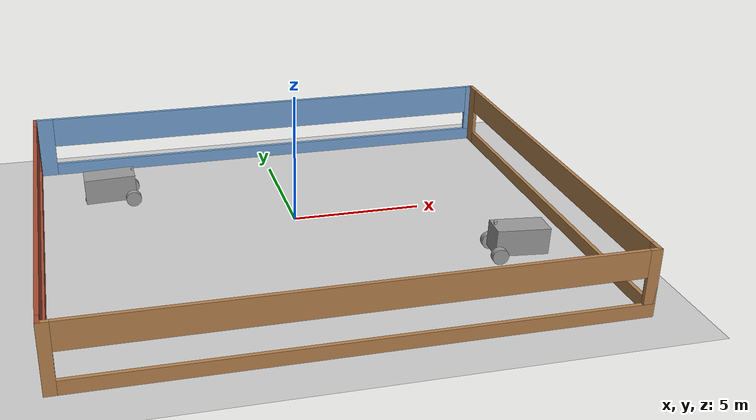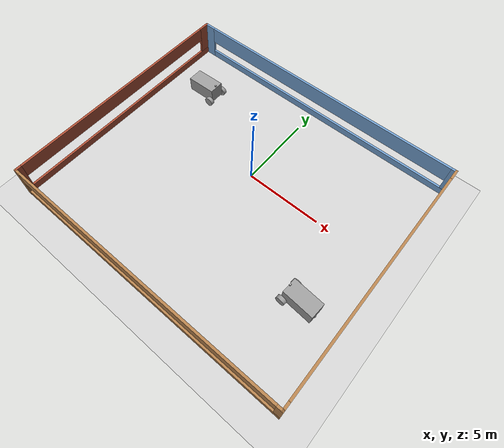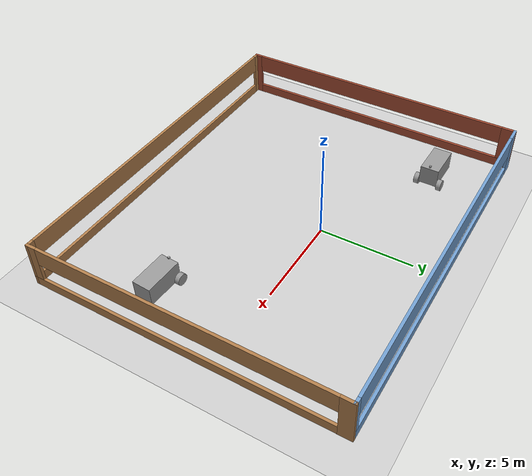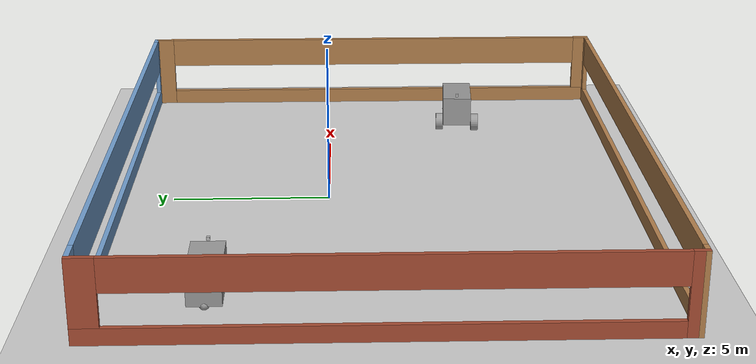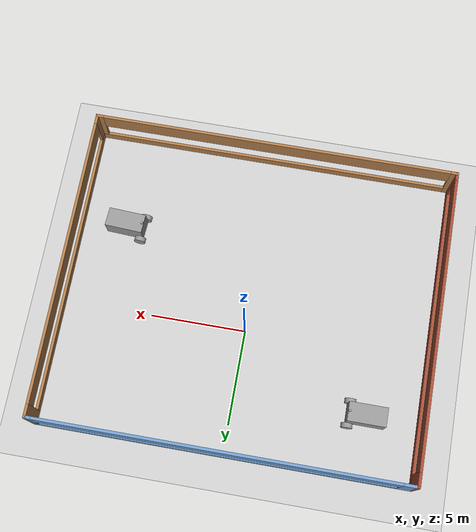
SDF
<sdf version="1.4">
 <world name="default">
  <plugin name="hello_world" filename="libhello_world.so"/>
  <light name="sun" type="directional">
   <pose>0 0 10 0 -0 0</pose>
   <diffuse>0.8 0.8 0.8 1</diffuse>
   <specular>0.2 0.2 0.2 1</specular>
   <attenuation>
    <range>1000</range>
    <constant>0.9</constant>
    <linear>0.01</linear>
    <quadratic>0.001</quadratic>
   </attenuation>
   <direction>-0.5 0.1 -0.9</direction>
  </light>
  <model name="ground_plane">
   <static>1</static>
   <link name="link">
    <collision name="collision">
     <geometry><plane><normal>0 0 1</normal><size>100 100</size></plane></geometry>
     <surface>
      <contact><collide_bitmask>65535</collide_bitmask></contact>
      <friction><ode><mu>100</mu><mu2>50</mu2></ode></friction>
     </surface>
    </collision>
    <visual name="visual">
     <cast_shadows>0</cast_shadows>
     <geometry><plane><normal>0 0 1</normal><size>100 100</size></plane></geometry>
     <material>
      <script><uri>file://media/materials/scripts/gazebo.material</uri><name>Gazebo/Grey</name></script>
     </material>
    </visual>
   </link>
  </model>
  <gravity>0 0 -9.8</gravity>
  <magnetic_field>6e-06 2.3e-05 -4.2e-05</magnetic_field>
  <atmosphere type="adiabatic"/>
  <physics name="default_physics" default="0" type="ode">
   <max_step_size>0.001</max_step_size>
   <real_time_factor>1</real_time_factor>
   <real_time_update_rate>1000</real_time_update_rate>
  </physics>
  <scene><ambient>0.4 0.4 0.4 1</ambient><background>0.7 0.7 0.7 1</background><shadows>1</shadows></scene>
  <audio><device>default</device></audio>
  <spherical_coordinates>
   <surface_model>EARTH_WGS84</surface_model>
   <latitude_deg>0</latitude_deg>
   <longitude_deg>0</longitude_deg>
   <elevation>0</elevation>
   <heading_deg>0</heading_deg>
  </spherical_coordinates>
  <model name="Robot">
   <model name="first_vehcile_0">
    <link name="link">
     <inertial>
      <mass>1</mass>
      <inertia>
       <ixx>0.122564</ixx>
       <ixy>0</ixy>
       <ixz>0</ixz>
       <iyy>0.407773</iyy>
       <iyz>0</iyz>
       <izz>0.472213</izz>
      </inertia>
     </inertial>
     <pose>-0.506092 0.015491 0.2 0 -0 0</pose>
     <visual name="visual">
      <geometry><box><size>2 1 1</size></box></geometry>
      <material>
       <script><name>Gazebo/Grey</name><uri>file://media/materials/scripts/gazebo.material</uri></script>
       <shader type="vertex"><normal_map>__default__</normal_map></shader>
       <ambient>0.3 0.3 0.3 1</ambient>
       <diffuse>0.7 0.7 0.7 1</diffuse>
       <specular>0.01 0.01 0.01 1</specular>
       <emissive>0 0 0 1</emissive>
      </material>
     </visual>
     <collision name="collision">
      <geometry><box><size>2 1 1</size></box></geometry>
      <surface>
       <friction>
        <ode><mu>1</mu><mu2>1</mu2><fdir1>0 0 0</fdir1><slip1>0</slip1><slip2>0</slip2></ode>
        <torsional>
         <coefficient>1</coefficient>
         <patch_radius>0</patch_radius>
         <surface_radius>0</surface_radius>
         <use_patch_radius>1</use_patch_radius>
         <ode><slip>0</slip></ode>
        </torsional>
       </friction>
       <bounce><restitution_coefficient>0</restitution_coefficient><threshold>1e+06</threshold></bounce>
       <contact>
        <collide_without_contact>0</collide_without_contact>
        <collide_without_contact_bitmask>1</collide_without_contact_bitmask>
        <collide_bitmask>1</collide_bitmask>
        <ode>
         <soft_cfm>0</soft_cfm>
         <soft_erp>0.2</soft_erp>
         <kp>1e+13</kp>
         <kd>1</kd>
         <max_vel>0.01</max_vel>
         <min_depth>0</min_depth>
        </ode>
        <bullet>
         <split_impulse>1</split_impulse>
         <split_impulse_penetration_threshold>-0.01</split_impulse_penetration_threshold>
         <soft_cfm>0</soft_cfm>
         <soft_erp>0.2</soft_erp>
         <kp>1e+13</kp>
         <kd>1</kd>
        </bullet>
       </contact>
      </surface>
     </collision>
    </link>
    <link name="link_0">
     <inertial>
      <mass>1</mass>
      <inertia><ixx>0.145833</ixx><ixy>0</ixy><ixz>0</ixz><iyy>0.145833</iyy><iyz>0</iyz><izz>0.125</izz></inertia>
     </inertial>
     <pose>0.38 0.65 -0.2 1.5707 -0 0</pose>
     <visual name="visual">
      <geometry><cylinder><radius>0.3</radius><length>0.25</length></cylinder></geometry>
      <material>
       <lighting>1</lighting>
       <script><uri>file://media/materials/scripts/gazebo.material</uri><name>Gazebo/Grey</name></script>
       <shader type="vertex"><normal_map>__default__</normal_map></shader>
       <ambient>0.3 0.3 0.3 1</ambient>
       <diffuse>0.7 0.7 0.7 1</diffuse>
       <specular>0.01 0.01 0.01 1</specular>
       <emissive>0 0 0 1</emissive>
      </material>
     </visual>
     <collision name="collision">
      <geometry><cylinder><radius>0.3</radius><length>0.25</length></cylinder></geometry>
      <surface>
       <friction>
        <ode><mu>1</mu><mu2>1</mu2><fdir1>0 0 0</fdir1><slip1>0</slip1><slip2>0</slip2></ode>
        <torsional>
         <coefficient>1</coefficient>
         <patch_radius>0</patch_radius>
         <surface_radius>0</surface_radius>
         <use_patch_radius>1</use_patch_radius>
         <ode><slip>0</slip></ode>
        </torsional>
       </friction>
       <bounce><restitution_coefficient>0</restitution_coefficient><threshold>1e+06</threshold></bounce>
       <contact>
        <collide_without_contact>0</collide_without_contact>
        <collide_without_contact_bitmask>1</collide_without_contact_bitmask>
        <collide_bitmask>1</collide_bitmask>
        <ode>
         <soft_cfm>0</soft_cfm>
         <soft_erp>0.2</soft_erp>
         <kp>1e+13</kp>
         <kd>1</kd>
         <max_vel>0.01</max_vel>
         <min_depth>0</min_depth>
        </ode>
        <bullet>
         <split_impulse>1</split_impulse>
         <split_impulse_penetration_threshold>-0.01</split_impulse_penetration_threshold>
         <soft_cfm>0</soft_cfm>
         <soft_erp>0.2</soft_erp>
         <kp>1e+13</kp>
         <kd>1</kd>
        </bullet>
       </contact>
      </surface>
     </collision>
    </link>
    <link name="link_0_clone">
     <inertial>
      <mass>1</mass>
      <inertia><ixx>0.145833</ixx><ixy>0</ixy><ixz>0</ixz><iyy>0.145833</iyy><iyz>0</iyz><izz>0.125</izz></inertia>
     </inertial>
     <pose>0.357708 -0.62 -0.2 1.5707 -0 0</pose>
     <visual name="visual">
      <geometry><cylinder><radius>0.3</radius><length>0.25</length></cylinder></geometry>
      <material>
       <lighting>1</lighting>
       <script><uri>file://media/materials/scripts/gazebo.material</uri><name>Gazebo/Grey</name></script>
       <shader type="vertex"><normal_map>__default__</normal_map></shader>
       <ambient>0.3 0.3 0.3 1</ambient>
       <diffuse>0.7 0.7 0.7 1</diffuse>
       <specular>0.01 0.01 0.01 1</specular>
       <emissive>0 0 0 1</emissive>
      </material>
     </visual>
     <collision name="collision">
      <geometry><cylinder><radius>0.3</radius><length>0.25</length></cylinder></geometry>
      <surface>
       <friction>
        <ode><mu>1</mu><mu2>1</mu2><fdir1>0 0 0</fdir1><slip1>0</slip1><slip2>0</slip2></ode>
        <torsional>
         <coefficient>1</coefficient>
         <patch_radius>0</patch_radius>
         <surface_radius>0</surface_radius>
         <use_patch_radius>1</use_patch_radius>
         <ode><slip>0</slip></ode>
        </torsional>
       </friction>
       <bounce><restitution_coefficient>0</restitution_coefficient><threshold>1e+06</threshold></bounce>
       <contact>
        <collide_without_contact>0</collide_without_contact>
        <collide_without_contact_bitmask>1</collide_without_contact_bitmask>
        <collide_bitmask>1</collide_bitmask>
        <ode>
         <soft_cfm>0</soft_cfm>
         <soft_erp>0.2</soft_erp>
         <kp>1e+13</kp>
         <kd>1</kd>
         <max_vel>0.01</max_vel>
         <min_depth>0</min_depth>
        </ode>
        <bullet>
         <split_impulse>1</split_impulse>
         <split_impulse_penetration_threshold>-0.01</split_impulse_penetration_threshold>
         <soft_cfm>0</soft_cfm>
         <soft_erp>0.2</soft_erp>
         <kp>1e+13</kp>
         <kd>1</kd>
        </bullet>
       </contact>
      </surface>
     </collision>
    </link>
    <link name="link_1">
     <inertial>
      <mass>1</mass>
      <inertia><ixx>0.1</ixx><ixy>0</ixy><ixz>0</ixz><iyy>0.1</iyy><iyz>0</iyz><izz>0.1</izz></inertia>
     </inertial>
     <pose>-1.39104 0.018049 -0.3 0 -0 0</pose>
     <visual name="visual">
      <geometry><sphere><radius>0.15</radius></sphere></geometry>
      <material>
       <lighting>1</lighting>
       <script><uri>file://media/materials/scripts/gazebo.material</uri><name>Gazebo/Grey</name></script>
       <shader type="vertex"><normal_map>__default__</normal_map></shader>
       <ambient>0.3 0.3 0.3 1</ambient>
       <diffuse>0.7 0.7 0.7 1</diffuse>
       <specular>0.01 0.01 0.01 1</specular>
       <emissive>0 0 0 1</emissive>
      </material>
     </visual>
     <collision name="collision">
      <geometry><sphere><radius>0.15</radius></sphere></geometry>
      <surface>
       <friction>
        <ode><mu>1</mu><mu2>1</mu2><fdir1>0 0 0</fdir1><slip1>0</slip1><slip2>0</slip2></ode>
        <torsional>
         <coefficient>1</coefficient>
         <patch_radius>0</patch_radius>
         <surface_radius>0</surface_radius>
         <use_patch_radius>1</use_patch_radius>
         <ode><slip>0</slip></ode>
        </torsional>
       </friction>
       <bounce><restitution_coefficient>0</restitution_coefficient><threshold>1e+06</threshold></bounce>
       <contact>
        <collide_without_contact>0</collide_without_contact>
        <collide_without_contact_bitmask>1</collide_without_contact_bitmask>
        <collide_bitmask>1</collide_bitmask>
        <ode>
         <soft_cfm>0</soft_cfm>
         <soft_erp>0.2</soft_erp>
         <kp>1e+13</kp>
         <kd>1</kd>
         <max_vel>0.01</max_vel>
         <min_depth>0</min_depth>
        </ode>
        <bullet>
         <split_impulse>1</split_impulse>
         <split_impulse_penetration_threshold>-0.01</split_impulse_penetration_threshold>
         <soft_cfm>0</soft_cfm>
         <soft_erp>0.2</soft_erp>
         <kp>1e+13</kp>
         <kd>1</kd>
        </bullet>
       </contact>
      </surface>
     </collision>
    </link>
    <model name="camera">
     <pose>0.434372 0.004872 0.816972 0 -0 0</pose>
     <link name="link">
      <inertial>
       <mass>0.1</mass>
       <inertia>
        <ixx>0.000166667</ixx>
        <iyy>0.000166667</iyy>
        <izz>0.000166667</izz>
        <ixy>0</ixy>
        <ixz>0</ixz>
        <iyz>0</iyz>
       </inertia>
      </inertial>
      <collision name="collision"><geometry><box><size>0.1 0.1 0.1</size></box></geometry></collision>
      <visual name="visual"><geometry><box><size>0.1 0.1 0.1</size></box></geometry></visual>
      <sensor name="camera" type="camera">
       <camera name="__default__">
        <horizontal_fov>1.047</horizontal_fov>
        <image><width>320</width><height>240</height></image>
        <clip><near>0.1</near><far>100</far></clip>
       </camera>
       <always_on>1</always_on>
       <update_rate>30</update_rate>
       <visualize>1</visualize>
      </sensor>
     </link>
    </model>
    <joint name="link_JOINT_0" type="revolute">
     <parent>link</parent>
     <child>link_0</child>
     <axis>
      <xyz>1 0 0</xyz>
      <use_parent_model_frame>0</use_parent_model_frame>
      <limit>
       <lower>-1.79769e+308</lower>
       <upper>1.79769e+308</upper>
       <effort>-1</effort>
       <velocity>-1</velocity>
      </limit>
      <dynamics>
       <spring_reference>0</spring_reference>
       <spring_stiffness>0</spring_stiffness>
       <damping>0</damping>
      </dynamics>
     </axis>
     <physics>
      <ode><limit><cfm>0</cfm><erp>0.2</erp></limit><suspension><cfm>0</cfm><erp>0.2</erp></suspension></ode>
     </physics>
    </joint>
    <joint name="link_JOINT_2" type="revolute">
     <parent>link</parent>
     <child>link_0_clone</child>
     <axis>
      <xyz>1 0 0</xyz>
      <use_parent_model_frame>0</use_parent_model_frame>
      <limit>
       <lower>-1.79769e+308</lower>
       <upper>1.79769e+308</upper>
       <effort>-1</effort>
       <velocity>-1</velocity>
      </limit>
      <dynamics>
       <spring_reference>0</spring_reference>
       <spring_stiffness>0</spring_stiffness>
       <damping>0</damping>
      </dynamics>
     </axis>
     <physics>
      <ode><limit><cfm>0</cfm><erp>0.2</erp></limit><suspension><cfm>0</cfm><erp>0.2</erp></suspension></ode>
     </physics>
    </joint>
    <joint name="link_JOINT_3" type="ball">
     <parent>link</parent>
     <child>link_1</child>
     <physics>
      <ode><limit><cfm>0</cfm><erp>0.2</erp></limit><suspension><cfm>0</cfm><erp>0.2</erp></suspension></ode>
     </physics>
    </joint>
    <joint name="link_JOINT_7" type="revolute">
     <parent>link</parent>
     <child>camera::link</child>
     <axis>
      <xyz>1 0 0</xyz>
      <use_parent_model_frame>0</use_parent_model_frame>
      <limit>
       <lower>-1.79769e+308</lower>
       <upper>1.79769e+308</upper>
       <effort>-1</effort>
       <velocity>-1</velocity>
      </limit>
      <dynamics>
       <spring_reference>0</spring_reference>
       <spring_stiffness>0</spring_stiffness>
       <damping>0</damping>
      </dynamics>
     </axis>
     <physics>
      <ode><limit><cfm>0</cfm><erp>0.2</erp></limit><suspension><cfm>0</cfm><erp>0.2</erp></suspension></ode>
     </physics>
    </joint>
    <static>0</static>
    <plugin name="follower" filename="libFollowerPlugin.so"/>
    <pose>2e-06 -3e-06 0 0 -0 0</pose>
   </model>
   <static>0</static>
   <pose>-6.35978 3.33916 0.489439 -0.000499 -0.028437 0.004253</pose>
  </model>
  <model name="Building">
   <pose>0.051205 -1.59057 0 0 -0 0</pose>
   <link name="Wall_39">
    <pose>-9.675 0 0 0 -0 1.5708</pose>
    <visual name="Wall_39_Visual_0">
     <pose>-8.01982 0 1.25 0 -0 0</pose>
     <geometry><box><size>0.460353 0.15 2.5</size></box></geometry>
     <material>
      <script><uri>file://media/materials/scripts/gazebo.material</uri><name>Gazebo/Bricks</name></script>
      <ambient>1 1 1 1</ambient>
     </material>
     <meta><layer>0</layer></meta>
    </visual>
    <collision name="Wall_39_Collision_0">
     <geometry><box><size>0.460353 0.15 2.5</size></box></geometry>
     <pose>-8.01982 0 1.25 0 -0 0</pose>
    </collision>
    <visual name="Wall_39_Visual_1">
     <pose>0.230176 0 0.25 0 -0 0</pose>
     <geometry><box><size>16.0396 0.15 0.5</size></box></geometry>
     <material>
      <script><uri>file://media/materials/scripts/gazebo.material</uri><name>Gazebo/Bricks</name></script>
      <ambient>1 1 1 1</ambient>
     </material>
     <meta><layer>0</layer></meta>
    </visual>
    <collision name="Wall_39_Collision_1">
     <geometry><box><size>16.0396 0.15 0.5</size></box></geometry>
     <pose>0.230176 0 0.25 0 -0 0</pose>
    </collision>
    <visual name="Wall_39_Visual_2">
     <pose>7.85018 0 1.5 0 -0 0</pose>
     <geometry><box><size>0.799647 0.15 2</size></box></geometry>
     <material>
      <script><uri>file://media/materials/scripts/gazebo.material</uri><name>Gazebo/Bricks</name></script>
      <ambient>1 1 1 1</ambient>
     </material>
     <meta><layer>0</layer></meta>
    </visual>
    <collision name="Wall_39_Collision_2">
     <geometry><box><size>0.799647 0.15 2</size></box></geometry>
     <pose>7.85018 0 1.5 0 -0 0</pose>
    </collision>
    <visual name="Wall_39_Visual_3">
     <pose>-0.169647 0 2 0 -0 0</pose>
     <geometry><box><size>15.24 0.15 1</size></box></geometry>
     <material>
      <script><uri>file://media/materials/scripts/gazebo.material</uri><name>Gazebo/Bricks</name></script>
      <ambient>1 1 1 1</ambient>
     </material>
     <meta><layer>0</layer></meta>
    </visual>
    <collision name="Wall_39_Collision_3">
     <geometry><box><size>15.24 0.15 1</size></box></geometry>
     <pose>-0.169647 0 2 0 -0 0</pose>
    </collision>
   </link>
   <link name="Wall_40">
    <pose>-0 8.175 0 0 -0 0</pose>
    <visual name="Wall_40_Visual_0">
     <pose>-9.34874 0 1.25 0 -0 0</pose>
     <geometry><box><size>0.802523 0.15 2.5</size></box></geometry>
     <material>
      <script><uri>file://media/materials/scripts/gazebo.material</uri><name>Gazebo/Grey</name></script>
      <ambient>0.447059 0.623529 0.811765 1</ambient>
     </material>
     <meta><layer>0</layer></meta>
    </visual>
    <collision name="Wall_40_Collision_0">
     <geometry><box><size>0.802523 0.15 2.5</size></box></geometry>
     <pose>-9.34874 0 1.25 0 -0 0</pose>
    </collision>
    <visual name="Wall_40_Visual_1">
     <pose>0.401262 0 0.25 0 -0 0</pose>
     <geometry><box><size>18.6975 0.15 0.5</size></box></geometry>
     <material>
      <script><uri>file://media/materials/scripts/gazebo.material</uri><name>Gazebo/Grey</name></script>
      <ambient>0.447059 0.623529 0.811765 1</ambient>
     </material>
     <meta><layer>0</layer></meta>
    </visual>
    <collision name="Wall_40_Collision_1">
     <geometry><box><size>18.6975 0.15 0.5</size></box></geometry>
     <pose>0.401262 0 0.25 0 -0 0</pose>
    </collision>
    <visual name="Wall_40_Visual_2">
     <pose>9.56603 0 1.5 0 -0 0</pose>
     <geometry><box><size>0.367946 0.15 2</size></box></geometry>
     <material>
      <script><uri>file://media/materials/scripts/gazebo.material</uri><name>Gazebo/Grey</name></script>
      <ambient>0.447059 0.623529 0.811765 1</ambient>
     </material>
     <meta><layer>0</layer></meta>
    </visual>
    <collision name="Wall_40_Collision_2">
     <geometry><box><size>0.367946 0.15 2</size></box></geometry>
     <pose>9.56603 0 1.5 0 -0 0</pose>
    </collision>
    <visual name="Wall_40_Visual_3">
     <pose>0.217289 0 1.9 0 -0 0</pose>
     <geometry><box><size>18.3295 0.15 1.2</size></box></geometry>
     <material>
      <script><uri>file://media/materials/scripts/gazebo.material</uri><name>Gazebo/Grey</name></script>
      <ambient>0.447059 0.623529 0.811765 1</ambient>
     </material>
     <meta><layer>0</layer></meta>
    </visual>
    <collision name="Wall_40_Collision_3">
     <geometry><box><size>18.3295 0.15 1.2</size></box></geometry>
     <pose>0.217289 0 1.9 0 -0 0</pose>
    </collision>
   </link>
   <link name="Wall_42">
    <pose>9.675 0 0 0 -0 -1.5708</pose>
    <visual name="Wall_42_Visual_0">
     <pose>-7.89367 0 1.25 0 -0 0</pose>
     <geometry><box><size>0.712665 0.15 2.5</size></box></geometry>
     <material>
      <script><uri>file://media/materials/scripts/gazebo.material</uri><name>Gazebo/Wood</name></script>
      <ambient>1 1 1 1</ambient>
     </material>
     <meta><layer>0</layer></meta>
    </visual>
    <collision name="Wall_42_Collision_0">
     <geometry><box><size>0.712665 0.15 2.5</size></box></geometry>
     <pose>-7.89367 0 1.25 0 -0 0</pose>
    </collision>
    <visual name="Wall_42_Visual_1">
     <pose>0.356333 0 0.25 0 -0 0</pose>
     <geometry><box><size>15.7873 0.15 0.5</size></box></geometry>
     <material>
      <script><uri>file://media/materials/scripts/gazebo.material</uri><name>Gazebo/Wood</name></script>
      <ambient>1 1 1 1</ambient>
     </material>
     <meta><layer>0</layer></meta>
    </visual>
    <collision name="Wall_42_Collision_1">
     <geometry><box><size>15.7873 0.15 0.5</size></box></geometry>
     <pose>0.356333 0 0.25 0 -0 0</pose>
    </collision>
    <visual name="Wall_42_Visual_2">
     <pose>7.97133 0 1.5 0 -0 0</pose>
     <geometry><box><size>0.557335 0.15 2</size></box></geometry>
     <material>
      <script><uri>file://media/materials/scripts/gazebo.material</uri><name>Gazebo/Wood</name></script>
      <ambient>1 1 1 1</ambient>
     </material>
     <meta><layer>0</layer></meta>
    </visual>
    <collision name="Wall_42_Collision_2">
     <geometry><box><size>0.557335 0.15 2</size></box></geometry>
     <pose>7.97133 0 1.5 0 -0 0</pose>
    </collision>
    <visual name="Wall_42_Visual_3">
     <pose>0.077665 0 2 0 -0 0</pose>
     <geometry><box><size>15.23 0.15 1</size></box></geometry>
     <material>
      <script><uri>file://media/materials/scripts/gazebo.material</uri><name>Gazebo/Wood</name></script>
      <ambient>1 1 1 1</ambient>
     </material>
     <meta><layer>0</layer></meta>
    </visual>
    <collision name="Wall_42_Collision_3">
     <geometry><box><size>15.23 0.15 1</size></box></geometry>
     <pose>0.077665 0 2 0 -0 0</pose>
    </collision>
   </link>
   <link name="Wall_46">
    <pose>-0 -8.175 0 0 -0 0</pose>
    <visual name="Wall_46_Visual_0">
     <pose>-9.54295 0 1.25 0 -0 0</pose>
     <geometry><box><size>0.414098 0.15 2.5</size></box></geometry>
     <material>
      <script><uri>file://media/materials/scripts/gazebo.material</uri><name>Gazebo/Wood</name></script>
      <ambient>1 1 1 1</ambient>
     </material>
     <meta><layer>0</layer></meta>
    </visual>
    <collision name="Wall_46_Collision_0">
     <geometry><box><size>0.414098 0.15 2.5</size></box></geometry>
     <pose>-9.54295 0 1.25 0 -0 0</pose>
    </collision>
    <visual name="Wall_46_Visual_1">
     <pose>0.207049 0 0.25 0 -0 0</pose>
     <geometry><box><size>19.0859 0.15 0.5</size></box></geometry>
     <material>
      <script><uri>file://media/materials/scripts/gazebo.material</uri><name>Gazebo/Wood</name></script>
      <ambient>1 1 1 1</ambient>
     </material>
     <meta><layer>0</layer></meta>
    </visual>
    <collision name="Wall_46_Collision_1">
     <geometry><box><size>19.0859 0.15 0.5</size></box></geometry>
     <pose>0.207049 0 0.25 0 -0 0</pose>
    </collision>
    <visual name="Wall_46_Visual_2">
     <pose>9.54246 0 1.5 0 -0 0</pose>
     <geometry><box><size>0.41509 0.15 2</size></box></geometry>
     <material>
      <script><uri>file://media/materials/scripts/gazebo.material</uri><name>Gazebo/Wood</name></script>
      <ambient>1 1 1 1</ambient>
     </material>
     <meta><layer>0</layer></meta>
    </visual>
    <collision name="Wall_46_Collision_2">
     <geometry><box><size>0.41509 0.15 2</size></box></geometry>
     <pose>9.54246 0 1.5 0 -0 0</pose>
    </collision>
    <visual name="Wall_46_Visual_3">
     <pose>-0.000496 0 2 0 -0 0</pose>
     <geometry><box><size>18.6708 0.15 1</size></box></geometry>
     <material>
      <script><uri>file://media/materials/scripts/gazebo.material</uri><name>Gazebo/Wood</name></script>
      <ambient>1 1 1 1</ambient>
     </material>
     <meta><layer>0</layer></meta>
    </visual>
    <collision name="Wall_46_Collision_3">
     <geometry><box><size>18.6708 0.15 1</size></box></geometry>
     <pose>-0.000496 0 2 0 -0 0</pose>
    </collision>
   </link>
   <static>1</static>
  </model>
  <model name="Robot_0">
   <model name="first_vehcile_0">
    <link name="link">
     <inertial>
      <mass>1</mass>
      <inertia>
       <ixx>0.122564</ixx>
       <ixy>0</ixy>
       <ixz>0</ixz>
       <iyy>0.407773</iyy>
       <iyz>0</iyz>
       <izz>0.472213</izz>
      </inertia>
     </inertial>
     <pose>-0.506092 0.015491 0.2 0 -0 0</pose>
     <visual name="visual">
      <geometry><box><size>2 1 1</size></box></geometry>
      <material>
       <script><name>Gazebo/Grey</name><uri>file://media/materials/scripts/gazebo.material</uri></script>
       <shader type="vertex"><normal_map>__default__</normal_map></shader>
       <ambient>0.3 0.3 0.3 1</ambient>
       <diffuse>0.7 0.7 0.7 1</diffuse>
       <specular>0.01 0.01 0.01 1</specular>
       <emissive>0 0 0 1</emissive>
      </material>
     </visual>
     <collision name="collision">
      <geometry><box><size>2 1 1</size></box></geometry>
      <surface>
       <friction>
        <ode><mu>1</mu><mu2>1</mu2><fdir1>0 0 0</fdir1><slip1>0</slip1><slip2>0</slip2></ode>
        <torsional>
         <coefficient>1</coefficient>
         <patch_radius>0</patch_radius>
         <surface_radius>0</surface_radius>
         <use_patch_radius>1</use_patch_radius>
         <ode><slip>0</slip></ode>
        </torsional>
       </friction>
       <bounce><restitution_coefficient>0</restitution_coefficient><threshold>1e+06</threshold></bounce>
       <contact>
        <collide_without_contact>0</collide_without_contact>
        <collide_without_contact_bitmask>1</collide_without_contact_bitmask>
        <collide_bitmask>1</collide_bitmask>
        <ode>
         <soft_cfm>0</soft_cfm>
         <soft_erp>0.2</soft_erp>
         <kp>1e+13</kp>
         <kd>1</kd>
         <max_vel>0.01</max_vel>
         <min_depth>0</min_depth>
        </ode>
        <bullet>
         <split_impulse>1</split_impulse>
         <split_impulse_penetration_threshold>-0.01</split_impulse_penetration_threshold>
         <soft_cfm>0</soft_cfm>
         <soft_erp>0.2</soft_erp>
         <kp>1e+13</kp>
         <kd>1</kd>
        </bullet>
       </contact>
      </surface>
     </collision>
    </link>
    <link name="link_0">
     <inertial>
      <mass>1</mass>
      <inertia><ixx>0.145833</ixx><ixy>0</ixy><ixz>0</ixz><iyy>0.145833</iyy><iyz>0</iyz><izz>0.125</izz></inertia>
     </inertial>
     <pose>0.38 0.65 -0.2 1.5707 -0 0</pose>
     <visual name="visual">
      <geometry><cylinder><radius>0.3</radius><length>0.25</length></cylinder></geometry>
      <material>
       <lighting>1</lighting>
       <script><uri>file://media/materials/scripts/gazebo.material</uri><name>Gazebo/Grey</name></script>
       <shader type="vertex"><normal_map>__default__</normal_map></shader>
       <ambient>0.3 0.3 0.3 1</ambient>
       <diffuse>0.7 0.7 0.7 1</diffuse>
       <specular>0.01 0.01 0.01 1</specular>
       <emissive>0 0 0 1</emissive>
      </material>
     </visual>
     <collision name="collision">
      <geometry><cylinder><radius>0.3</radius><length>0.25</length></cylinder></geometry>
      <surface>
       <friction>
        <ode><mu>1</mu><mu2>1</mu2><fdir1>0 0 0</fdir1><slip1>0</slip1><slip2>0</slip2></ode>
        <torsional>
         <coefficient>1</coefficient>
         <patch_radius>0</patch_radius>
         <surface_radius>0</surface_radius>
         <use_patch_radius>1</use_patch_radius>
         <ode><slip>0</slip></ode>
        </torsional>
       </friction>
       <bounce><restitution_coefficient>0</restitution_coefficient><threshold>1e+06</threshold></bounce>
       <contact>
        <collide_without_contact>0</collide_without_contact>
        <collide_without_contact_bitmask>1</collide_without_contact_bitmask>
        <collide_bitmask>1</collide_bitmask>
        <ode>
         <soft_cfm>0</soft_cfm>
         <soft_erp>0.2</soft_erp>
         <kp>1e+13</kp>
         <kd>1</kd>
         <max_vel>0.01</max_vel>
         <min_depth>0</min_depth>
        </ode>
        <bullet>
         <split_impulse>1</split_impulse>
         <split_impulse_penetration_threshold>-0.01</split_impulse_penetration_threshold>
         <soft_cfm>0</soft_cfm>
         <soft_erp>0.2</soft_erp>
         <kp>1e+13</kp>
         <kd>1</kd>
        </bullet>
       </contact>
      </surface>
     </collision>
    </link>
    <link name="link_0_clone">
     <inertial>
      <mass>1</mass>
      <inertia><ixx>0.145833</ixx><ixy>0</ixy><ixz>0</ixz><iyy>0.145833</iyy><iyz>0</iyz><izz>0.125</izz></inertia>
     </inertial>
     <pose>0.357708 -0.62 -0.2 1.5707 -0 0</pose>
     <visual name="visual">
      <geometry><cylinder><radius>0.3</radius><length>0.25</length></cylinder></geometry>
      <material>
       <lighting>1</lighting>
       <script><uri>file://media/materials/scripts/gazebo.material</uri><name>Gazebo/Grey</name></script>
       <shader type="vertex"><normal_map>__default__</normal_map></shader>
       <ambient>0.3 0.3 0.3 1</ambient>
       <diffuse>0.7 0.7 0.7 1</diffuse>
       <specular>0.01 0.01 0.01 1</specular>
       <emissive>0 0 0 1</emissive>
      </material>
     </visual>
     <collision name="collision">
      <geometry><cylinder><radius>0.3</radius><length>0.25</length></cylinder></geometry>
      <surface>
       <friction>
        <ode><mu>1</mu><mu2>1</mu2><fdir1>0 0 0</fdir1><slip1>0</slip1><slip2>0</slip2></ode>
        <torsional>
         <coefficient>1</coefficient>
         <patch_radius>0</patch_radius>
         <surface_radius>0</surface_radius>
         <use_patch_radius>1</use_patch_radius>
         <ode><slip>0</slip></ode>
        </torsional>
       </friction>
       <bounce><restitution_coefficient>0</restitution_coefficient><threshold>1e+06</threshold></bounce>
       <contact>
        <collide_without_contact>0</collide_without_contact>
        <collide_without_contact_bitmask>1</collide_without_contact_bitmask>
        <collide_bitmask>1</collide_bitmask>
        <ode>
         <soft_cfm>0</soft_cfm>
         <soft_erp>0.2</soft_erp>
         <kp>1e+13</kp>
         <kd>1</kd>
         <max_vel>0.01</max_vel>
         <min_depth>0</min_depth>
        </ode>
        <bullet>
         <split_impulse>1</split_impulse>
         <split_impulse_penetration_threshold>-0.01</split_impulse_penetration_threshold>
         <soft_cfm>0</soft_cfm>
         <soft_erp>0.2</soft_erp>
         <kp>1e+13</kp>
         <kd>1</kd>
        </bullet>
       </contact>
      </surface>
     </collision>
    </link>
    <link name="link_1">
     <inertial>
      <mass>1</mass>
      <inertia><ixx>0.1</ixx><ixy>0</ixy><ixz>0</ixz><iyy>0.1</iyy><iyz>0</iyz><izz>0.1</izz></inertia>
     </inertial>
     <pose>-1.39104 0.018049 -0.3 0 -0 0</pose>
     <visual name="visual">
      <geometry><sphere><radius>0.15</radius></sphere></geometry>
      <material>
       <lighting>1</lighting>
       <script><uri>file://media/materials/scripts/gazebo.material</uri><name>Gazebo/Grey</name></script>
       <shader type="vertex"><normal_map>__default__</normal_map></shader>
       <ambient>0.3 0.3 0.3 1</ambient>
       <diffuse>0.7 0.7 0.7 1</diffuse>
       <specular>0.01 0.01 0.01 1</specular>
       <emissive>0 0 0 1</emissive>
      </material>
     </visual>
     <collision name="collision">
      <geometry><sphere><radius>0.15</radius></sphere></geometry>
      <surface>
       <friction>
        <ode><mu>1</mu><mu2>1</mu2><fdir1>0 0 0</fdir1><slip1>0</slip1><slip2>0</slip2></ode>
        <torsional>
         <coefficient>1</coefficient>
         <patch_radius>0</patch_radius>
         <surface_radius>0</surface_radius>
         <use_patch_radius>1</use_patch_radius>
         <ode><slip>0</slip></ode>
        </torsional>
       </friction>
       <bounce><restitution_coefficient>0</restitution_coefficient><threshold>1e+06</threshold></bounce>
       <contact>
        <collide_without_contact>0</collide_without_contact>
        <collide_without_contact_bitmask>1</collide_without_contact_bitmask>
        <collide_bitmask>1</collide_bitmask>
        <ode>
         <soft_cfm>0</soft_cfm>
         <soft_erp>0.2</soft_erp>
         <kp>1e+13</kp>
         <kd>1</kd>
         <max_vel>0.01</max_vel>
         <min_depth>0</min_depth>
        </ode>
        <bullet>
         <split_impulse>1</split_impulse>
         <split_impulse_penetration_threshold>-0.01</split_impulse_penetration_threshold>
         <soft_cfm>0</soft_cfm>
         <soft_erp>0.2</soft_erp>
         <kp>1e+13</kp>
         <kd>1</kd>
        </bullet>
       </contact>
      </surface>
     </collision>
    </link>
    <model name="camera">
     <pose>0.434372 0.004872 0.816972 0 -0 0</pose>
     <link name="link">
      <inertial>
       <mass>0.1</mass>
       <inertia>
        <ixx>0.000166667</ixx>
        <iyy>0.000166667</iyy>
        <izz>0.000166667</izz>
        <ixy>0</ixy>
        <ixz>0</ixz>
        <iyz>0</iyz>
       </inertia>
      </inertial>
      <collision name="collision"><geometry><box><size>0.1 0.1 0.1</size></box></geometry></collision>
      <visual name="visual"><geometry><box><size>0.1 0.1 0.1</size></box></geometry></visual>
      <sensor name="camera" type="camera">
       <camera name="__default__">
        <horizontal_fov>1.047</horizontal_fov>
        <image><width>320</width><height>240</height></image>
        <clip><near>0.1</near><far>100</far></clip>
       </camera>
       <always_on>1</always_on>
       <update_rate>30</update_rate>
       <visualize>1</visualize>
      </sensor>
     </link>
    </model>
    <joint name="link_JOINT_0" type="revolute">
     <parent>link</parent>
     <child>link_0</child>
     <axis>
      <xyz>1 0 0</xyz>
      <use_parent_model_frame>0</use_parent_model_frame>
      <limit>
       <lower>-1.79769e+308</lower>
       <upper>1.79769e+308</upper>
       <effort>-1</effort>
       <velocity>-1</velocity>
      </limit>
      <dynamics>
       <spring_reference>0</spring_reference>
       <spring_stiffness>0</spring_stiffness>
       <damping>0</damping>
      </dynamics>
     </axis>
     <physics>
      <ode><limit><cfm>0</cfm><erp>0.2</erp></limit><suspension><cfm>0</cfm><erp>0.2</erp></suspension></ode>
     </physics>
    </joint>
    <joint name="link_JOINT_2" type="revolute">
     <parent>link</parent>
     <child>link_0_clone</child>
     <axis>
      <xyz>1 0 0</xyz>
      <use_parent_model_frame>0</use_parent_model_frame>
      <limit>
       <lower>-1.79769e+308</lower>
       <upper>1.79769e+308</upper>
       <effort>-1</effort>
       <velocity>-1</velocity>
      </limit>
      <dynamics>
       <spring_reference>0</spring_reference>
       <spring_stiffness>0</spring_stiffness>
       <damping>0</damping>
      </dynamics>
     </axis>
     <physics>
      <ode><limit><cfm>0</cfm><erp>0.2</erp></limit><suspension><cfm>0</cfm><erp>0.2</erp></suspension></ode>
     </physics>
    </joint>
    <joint name="link_JOINT_3" type="ball">
     <parent>link</parent>
     <child>link_1</child>
     <physics>
      <ode><limit><cfm>0</cfm><erp>0.2</erp></limit><suspension><cfm>0</cfm><erp>0.2</erp></suspension></ode>
     </physics>
    </joint>
    <joint name="link_JOINT_7" type="revolute">
     <parent>link</parent>
     <child>camera::link</child>
     <axis>
      <xyz>1 0 0</xyz>
      <use_parent_model_frame>0</use_parent_model_frame>
      <limit>
       <lower>-1.79769e+308</lower>
       <upper>1.79769e+308</upper>
       <effort>-1</effort>
       <velocity>-1</velocity>
      </limit>
      <dynamics>
       <spring_reference>0</spring_reference>
       <spring_stiffness>0</spring_stiffness>
       <damping>0</damping>
      </dynamics>
     </axis>
     <physics>
      <ode><limit><cfm>0</cfm><erp>0.2</erp></limit><suspension><cfm>0</cfm><erp>0.2</erp></suspension></ode>
     </physics>
    </joint>
    <static>0</static>
    <plugin name="follower" filename="libFollowerPlugin.so"/>
    <pose>2e-06 -3e-06 0 0 -0 0</pose>
   </model>
   <static>0</static>
   <pose>6.76873 -4.61639 0.489439 -0.000499 -0.028437 3.08181</pose>
  </model>
 </world>
</sdf>
